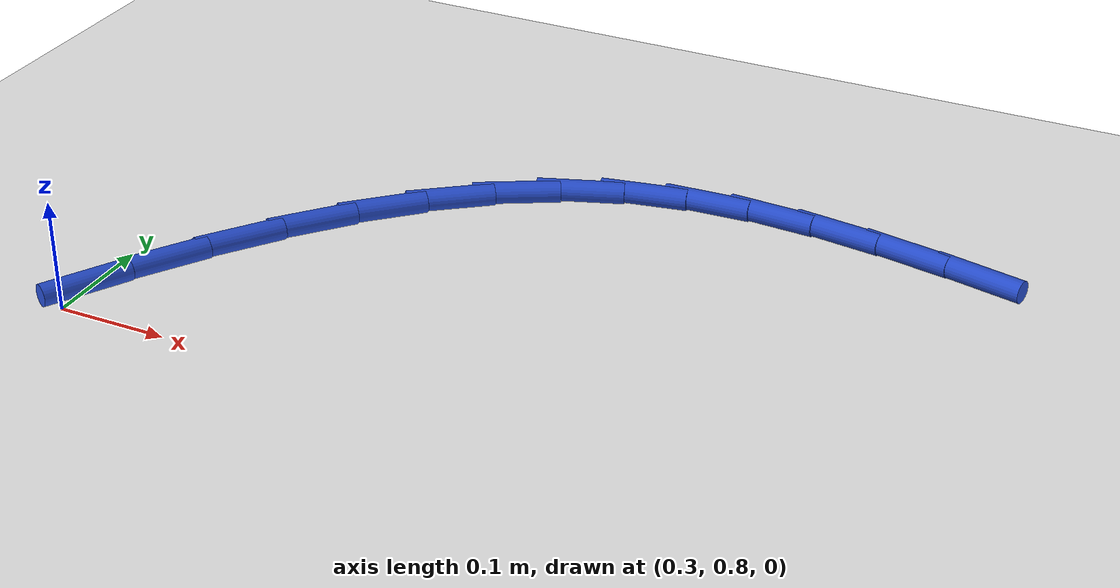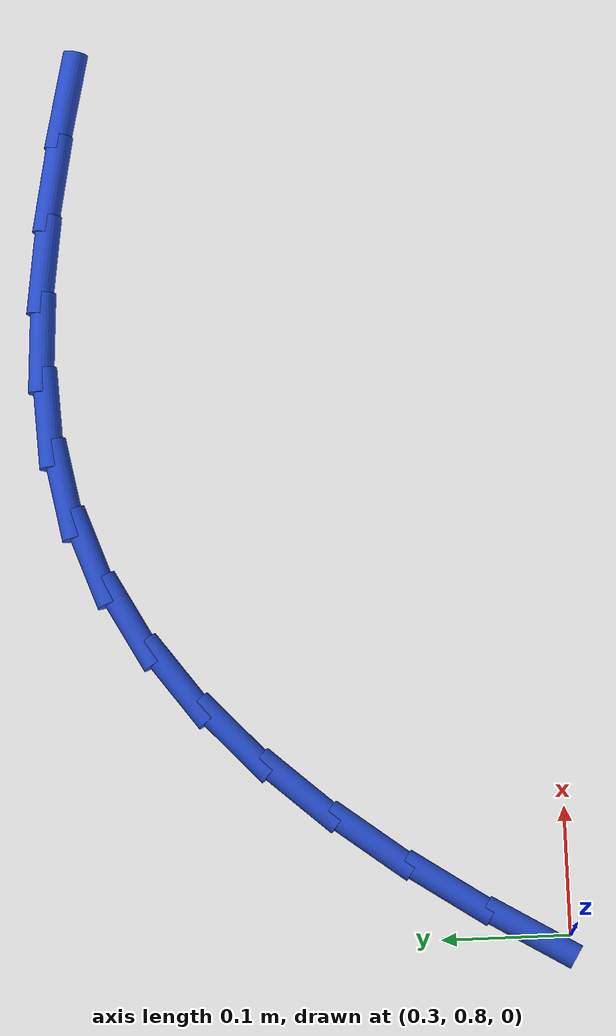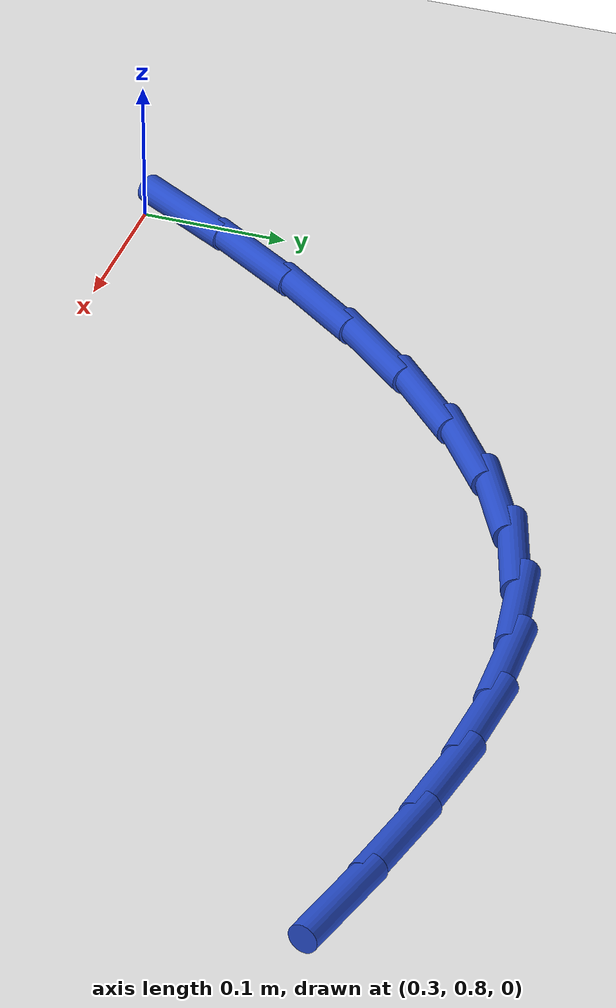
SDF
<sdf version="1.6">
 <world name="default">
  <model name="ground_plane">
   <static>1</static>
   <link name="link">
    <collision name="collision">
     <geometry><plane><normal>0 0 1</normal><size>100 100</size></plane></geometry>
     <surface><friction><ode><mu>100</mu><mu2>50</mu2></ode></friction></surface>
    </collision>
    <visual name="visual">
     <cast_shadows>0</cast_shadows>
     <geometry><plane><normal>0 0 1</normal><size>100 100</size></plane></geometry>
     <material>
      <script><uri>file://media/materials/scripts/gazebo.material</uri><name>Gazebo/WhiteGlow</name></script>
     </material>
    </visual>
   </link>
  </model>
  <model name="line">
   <link name="link_13">
    <pose>0.3025316685137739 0.8310154554032821 0.01 0 1.57 1.0287837415042786</pose>
    <collision name="collision">
     <geometry><cylinder><radius>0.01</radius><length>0.08</length></cylinder></geometry>
    </collision>
    <visual name="visual">
     <material>
      <script><name>Gazebo/Blue</name><uri>file://media/materials/scripts/gazebo.material</uri></script>
     </material>
     <geometry><cylinder><radius>0.01</radius><length>0.08</length></cylinder></geometry>
    </visual>
   </link>
   <link name="link_14">
    <pose>0.3394806823629902 0.8923753627950584 0.01 0 1.57 0.9790586633339055</pose>
    <collision name="collision">
     <geometry><cylinder><radius>0.01</radius><length>0.08</length></cylinder></geometry>
    </collision>
    <visual name="visual">
     <material>
      <script><name>Gazebo/Blue</name><uri>file://media/materials/scripts/gazebo.material</uri></script>
     </material>
     <geometry><cylinder><radius>0.01</radius><length>0.08</length></cylinder></geometry>
    </visual>
   </link>
   <link name="link_15">
    <pose>0.37844900119957775 0.9503574400581638 0.01 0 1.57 0.9172001261141655</pose>
    <collision name="collision">
     <geometry><cylinder><radius>0.01</radius><length>0.08</length></cylinder></geometry>
    </collision>
    <visual name="visual">
     <material>
      <script><name>Gazebo/Blue</name><uri>file://media/materials/scripts/gazebo.material</uri></script>
     </material>
     <geometry><cylinder><radius>0.01</radius><length>0.08</length></cylinder></geometry>
    </visual>
   </link>
   <link name="link_16">
    <pose>0.4195963948048434 1.004082066086315 0.01 0 1.57 0.8407462187985281</pose>
    <collision name="collision">
     <geometry><cylinder><radius>0.01</radius><length>0.08</length></cylinder></geometry>
    </collision>
    <visual name="visual">
     <material>
      <script><name>Gazebo/Blue</name><uri>file://media/materials/scripts/gazebo.material</uri></script>
     </material>
     <geometry><cylinder><radius>0.01</radius><length>0.08</length></cylinder></geometry>
    </visual>
   </link>
   <link name="link_17">
    <pose>0.4630826329600943 1.0526696197732297 0.01 0 1.57 0.7468653313530447</pose>
    <collision name="collision">
     <geometry><cylinder><radius>0.01</radius><length>0.08</length></cylinder></geometry>
    </collision>
    <visual name="visual">
     <material>
      <script><name>Gazebo/Blue</name><uri>file://media/materials/scripts/gazebo.material</uri></script>
     </material>
     <geometry><cylinder><radius>0.01</radius><length>0.08</length></cylinder></geometry>
    </visual>
   </link>
   <link name="link_18">
    <pose>0.5090674854466373 1.0952404800126248 0.01 0 1.57 0.6327867851730958</pose>
    <collision name="collision">
     <geometry><cylinder><radius>0.01</radius><length>0.08</length></cylinder></geometry>
    </collision>
    <visual name="visual">
     <material>
      <script><name>Gazebo/Blue</name><uri>file://media/materials/scripts/gazebo.material</uri></script>
     </material>
     <geometry><cylinder><radius>0.01</radius><length>0.08</length></cylinder></geometry>
    </visual>
   </link>
   <link name="link_19">
    <pose>0.5577107220457794 1.1309150256982174 0.01 0 1.57 0.4967786052538917</pose>
    <collision name="collision">
     <geometry><cylinder><radius>0.01</radius><length>0.08</length></cylinder></geometry>
    </collision>
    <visual name="visual">
     <material>
      <script><name>Gazebo/Blue</name><uri>file://media/materials/scripts/gazebo.material</uri></script>
     </material>
     <geometry><cylinder><radius>0.01</radius><length>0.08</length></cylinder></geometry>
    </visual>
   </link>
   <link name="link_20">
    <pose>0.6091721125388273 1.1588136357237242 0.01 0 1.57 0.33992659256611185</pose>
    <collision name="collision">
     <geometry><cylinder><radius>0.01</radius><length>0.08</length></cylinder></geometry>
    </collision>
    <visual name="visual">
     <material>
      <script><name>Gazebo/Blue</name><uri>file://media/materials/scripts/gazebo.material</uri></script>
     </material>
     <geometry><cylinder><radius>0.01</radius><length>0.08</length></cylinder></geometry>
    </visual>
   </link>
   <link name="link_21">
    <pose>0.66360966495602 1.1780657095258422 0.01 0 1.57 0.18020751683806355</pose>
    <collision name="collision">
     <geometry><cylinder><radius>0.01</radius><length>0.08</length></cylinder></geometry>
    </collision>
    <visual name="visual">
     <material>
      <script><name>Gazebo/Blue</name><uri>file://media/materials/scripts/gazebo.material</uri></script>
     </material>
     <geometry><cylinder><radius>0.01</radius><length>0.08</length></cylinder></geometry>
    </visual>
   </link>
   <link name="link_22">
    <pose>0.7210392430878177 1.1885284555076117 0.01 0 1.57 0.046177268828317374</pose>
    <collision name="collision">
     <geometry><cylinder><radius>0.01</radius><length>0.08</length></cylinder></geometry>
    </collision>
    <visual name="visual">
     <material>
      <script><name>Gazebo/Blue</name><uri>file://media/materials/scripts/gazebo.material</uri></script>
     </material>
     <geometry><cylinder><radius>0.01</radius><length>0.08</length></cylinder></geometry>
    </visual>
   </link>
   <link name="link_23">
    <pose>0.7812324032707686 1.1913099885863403 0.01 0 1.57 -0.058433560413224624</pose>
    <collision name="collision">
     <geometry><cylinder><radius>0.01</radius><length>0.08</length></cylinder></geometry>
    </collision>
    <visual name="visual">
     <material>
      <script><name>Gazebo/Blue</name><uri>file://media/materials/scripts/gazebo.material</uri></script>
     </material>
     <geometry><cylinder><radius>0.01</radius><length>0.08</length></cylinder></geometry>
    </visual>
   </link>
   <link name="link_24">
    <pose>0.8439366093071058 1.1876417826175714 0.01 0 1.57 -0.13594961390482507</pose>
    <collision name="collision">
     <geometry><cylinder><radius>0.01</radius><length>0.08</length></cylinder></geometry>
    </collision>
    <visual name="visual">
     <material>
      <script><name>Gazebo/Blue</name><uri>file://media/materials/scripts/gazebo.material</uri></script>
     </material>
     <geometry><cylinder><radius>0.01</radius><length>0.08</length></cylinder></geometry>
    </visual>
   </link>
   <link name="link_25">
    <pose>0.9088993249990629 1.1787553114568476 0.01 0 1.57 -0.18991151316749266</pose>
    <collision name="collision">
     <geometry><cylinder><radius>0.01</radius><length>0.08</length></cylinder></geometry>
    </collision>
    <visual name="visual">
     <material>
      <script><name>Gazebo/Blue</name><uri>file://media/materials/scripts/gazebo.material</uri></script>
     </material>
     <geometry><cylinder><radius>0.01</radius><length>0.08</length></cylinder></geometry>
    </visual>
   </link>
   <link name="link_26">
    <pose>0.9758680141488743 1.165882048959714 0.01 0 1.57 -0.22361378566479836</pose>
    <collision name="collision">
     <geometry><cylinder><radius>0.01</radius><length>0.08</length></cylinder></geometry>
    </collision>
    <visual name="visual">
     <material>
      <script><name>Gazebo/Blue</name><uri>file://media/materials/scripts/gazebo.material</uri></script>
     </material>
     <geometry><cylinder><radius>0.01</radius><length>0.08</length></cylinder></geometry>
    </visual>
   </link>
  </model>
 </world>
</sdf>
